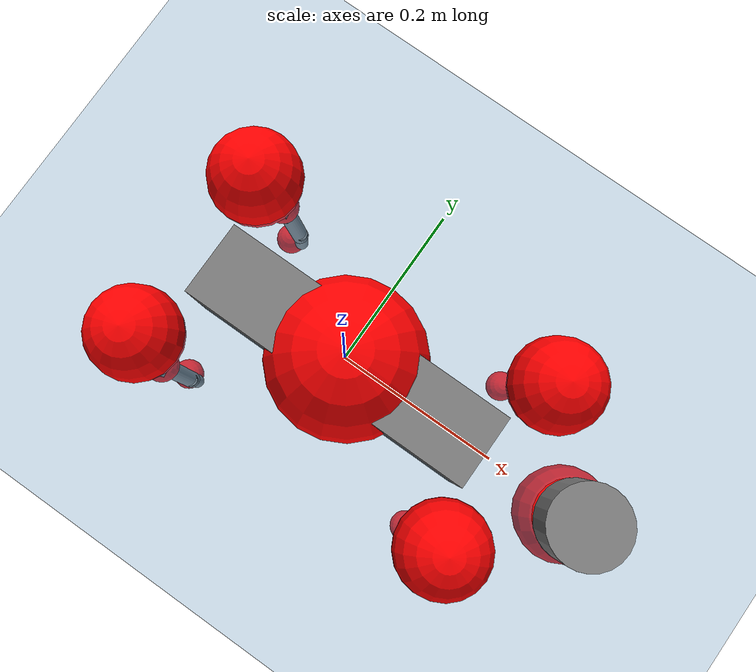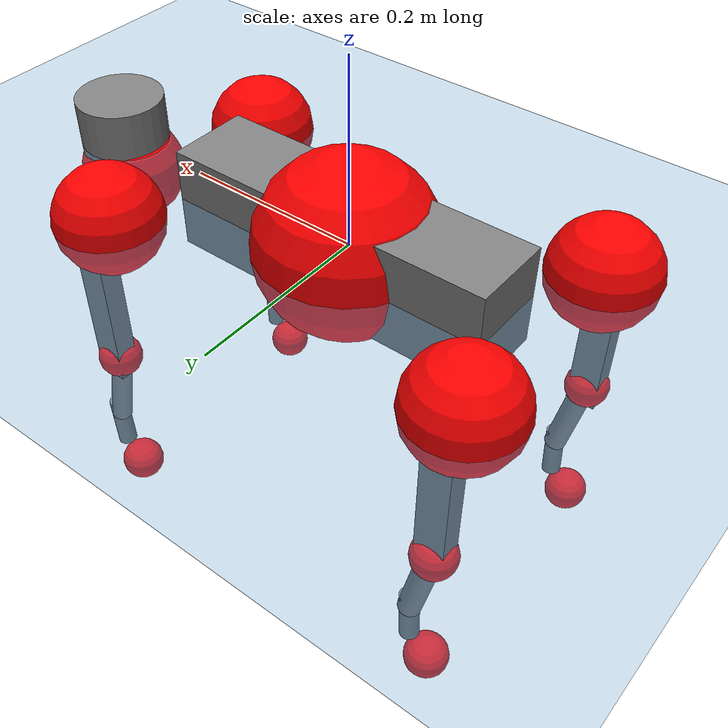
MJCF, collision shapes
<mujoco model="go2">
  <compiler angle="radian" assetdir="assets" balanceinertia="true" inertiafromgeom="false"/>

  <option timestep="0.005" density="1.2" viscosity="2e-05"/>

  <size nkey="1"/>

  <visual>
    <quality shadowsize="8192"/>
    <map shadowclip="0.5"/>
  </visual>

  <default>
    <default class="/">
      <geom contype="0" conaffinity="0" group="1" solref="-1000 -80"/>
      <site size="0.01 0.005 0.005" group="5"/>
      <general forcelimited="true" biastype="affine" gainprm="20" biasprm="0 -20 -0.5"/>
      <default class="go2">
        <joint armature="0.01" damping="0.01" frictionloss="0.2"/>
        <geom condim="1" margin="0.001"/>
        <default class="visual">
          <geom type="mesh" group="2"/>
        </default>
        <default class="collision">
          <geom group="3"/>
          <default class="foot">
            <geom size="0.022 0 0" condim="6" priority="1" friction="0.8 0.02 0.01" solimp="0.015 1 0.022"/>
          </default>
        </default>
        <default class="reward_collision_sphere">
          <geom group="5" rgba="1 0 0 1"/>
        </default>
      </default>
    </default>
  </default>

  <asset>
    <texture type="skybox" colorspace="auto" name="//unnamed_texture_0" builtin="gradient" rgb1="0.95 0.95 0.95" rgb2="0.95 0.95 0.95" width="100" height="600"/>
    <texture type="2d" colorspace="auto" name="texplane" builtin="checker" rgb1="0.345 0.575 0.748" rgb2="0.345 0.575 0.748" markrgb="1 1 1" width="512" height="512"/>
    <material name="MatPlane" class="/" texture="texplane" texuniform="true" texrepeat="2 2" specular="0.9"/>
    <material name="metal" class="/" rgba="0.9 0.95 0.95 1"/>
    <material name="black" class="/" rgba="0 0 0 1"/>
    <material name="white" class="/"/>
    <material name="gray" class="/" rgba="0.671705 0.692426 0.77427 1"/>
    <mesh name="base_0" class="/" file="base_0.obj"/>
    <mesh name="base_1" class="/" file="base_1.obj"/>
    <mesh name="base_2" class="/" file="base_2.obj"/>
    <mesh name="base_3" class="/" file="base_3.obj"/>
    <mesh name="base_4" class="/" file="base_4.obj"/>
    <mesh name="hip_0" class="/" file="hip_0.obj"/>
    <mesh name="hip_1" class="/" file="hip_1.obj"/>
    <mesh name="thigh_0" class="/" file="thigh_0.obj"/>
    <mesh name="thigh_1" class="/" file="thigh_1.obj"/>
    <mesh name="thigh_mirror_0" class="/" file="thigh_mirror_0.obj"/>
    <mesh name="thigh_mirror_1" class="/" file="thigh_mirror_1.obj"/>
    <mesh name="calf_0" class="/" file="calf_0.obj"/>
    <mesh name="calf_1" class="/" file="calf_1.obj"/>
    <mesh name="calf_mirror_0" class="/" file="calf_mirror_0.obj"/>
    <mesh name="calf_mirror_1" class="/" file="calf_mirror_1.obj"/>
    <mesh name="foot" class="/" file="foot.obj"/>
  </asset>

  <worldbody>
    <geom name="floor" class="/" size="100 100 0.125" type="plane" group="0" material="MatPlane"/>
    <light name="toplight_shadow" class="/" pos="0 0 5" dir="0.0990148 0.0990148 -0.990148" type="directional" ambient="0.04 0.04 0.04" diffuse="0.55 0.55 0.55" specular="0.12 0.12 0.12"/>
    <light name="toplight_fill" class="/" pos="0 0 5" dir="0.0990148 0.0990148 -0.990148" type="directional" castshadow="false" ambient="0.04 0.04 0.04" diffuse="0.3 0.3 0.3" specular="0.08 0.08 0.08"/>
    <body name="trunk" childclass="go2" pos="0.00233695 -0.000824864 -0.000545587" quat="1 0.000192065 0.000160187 -0.000398256">
      <inertial pos="0.0231342 -0.00056922 -0.004302" quat="-0.000422187 0.713308 -0.0015312 0.700849" mass="6.24293" diaginertia="0.188437 0.0945123 0.00856726"/>
      <joint name="//unnamed_joint_0" type="free" armature="0" damping="0" frictionloss="0"/>
      <geom name="//unnamed_geom_1" class="visual" material="black" mesh="base_0"/>
      <geom name="//unnamed_geom_2" class="visual" material="black" mesh="base_1"/>
      <geom name="//unnamed_geom_3" class="visual" material="black" mesh="base_2"/>
      <geom name="//unnamed_geom_4" class="visual" material="white" mesh="base_3"/>
      <geom name="//unnamed_geom_5" class="visual" material="gray" mesh="base_4"/>
      <geom name="trunk_1" class="collision" size="0.182139 0.0452685 0.0551937" type="box"/>
      <geom name="trunk_2" class="collision" size="0.0484156 0.043574" pos="0.315743 0 0.00810386" type="cylinder"/>
      <geom name="trunk_3" class="collision" size="0.0455106" pos="0.324606 0 -0.0486232"/>
      <geom name="//unnamed_geom_9" class="reward_collision_sphere" size="0.0968311"/>
      <geom name="//unnamed_geom_10" class="reward_collision_sphere" size="0.0580987" pos="0.310203 0 -0.0364674"/>
      <site name="imu" pos="-0.033522 0.000230884 0.0212956" size="0.00968311"/>
      <camera name="track" pos="0 -1.97336 0" quat="0.707107 0.707107 0 0" mode="trackcom"/>
      <camera name="ego_camera" pos="0.345655 0 0.0364674" quat="-0.5 -0.5 0.5 0.5"/>
      <body name="FL_hip" pos="0.214615 0.0461864 6.93914e-05" quat="1 -0.000407755 0.000183259 0.000807318">
        <inertial pos="-0.00838103 0.0028258 -9.30606e-05" quat="0.497868 0.499168 0.505278 0.497648" mass="0.619019" diaginertia="0.00148261 0.000545586 0.000166757"/>
        <joint name="FL_hip_joint" pos="0 0 0" axis="0.999902 0.0123793 0.00658548" range="-1.06095 1.05012" armature="0.0084106" damping="0.00656302" frictionloss="0.191412"/>
        <geom name="//unnamed_geom_11" class="visual" material="metal" mesh="hip_0"/>
        <geom name="//unnamed_geom_12" class="visual" material="gray" mesh="hip_1"/>
        <geom name="//unnamed_geom_13" class="collision" size="0.0445423 0.0193662" pos="0 0.0789342 0" quat="0.707107 0.707107 0 0" type="cylinder"/>
        <geom name="//unnamed_geom_14" class="reward_collision_sphere" size="0.0580987" pos="0 0.0690674 0"/>
        <body name="FL_thigh" pos="-0.00149368 0.0943438 0.000461229" quat="1 5.12867e-05 -1.16028e-05 0.000130311">
          <inertial pos="-0.00476253 -0.0217061 -0.0289809" quat="0.829485 0.0829438 -0.0197029 0.551985" mass="1.06557" diaginertia="0.0100742 0.00553748 0.000310369"/>
          <joint name="FL_thigh_joint" pos="0 0 0" axis="0.00883697 0.999944 0.0058682" range="-1.58433 3.4946" armature="0.0107312" damping="0" frictionloss="0.190338"/>
          <geom name="//unnamed_geom_15" class="visual" material="metal" mesh="thigh_0"/>
          <geom name="//unnamed_geom_16" class="visual" material="gray" mesh="thigh_1"/>
          <geom name="//unnamed_geom_17" class="collision" size="0.103125 0.0118618 0.0164613" pos="0 0 -0.0863061" quat="0.707107 0 0.707107 0" type="box"/>
          <body name="FL_calf" pos="-0.000432984 -0.0030671 -0.172531" quat="1 0.00026712 -0.000324137 -0.000493654">
            <inertial pos="0.00695916 0.000137388 -0.114799" quat="0.70278 0.00544499 -0.00897804 0.711329" mass="0.222144" diaginertia="0.00245386 0.00137489 1.82129e-05"/>
            <joint name="FL_calf_joint" pos="0 0 0" axis="-0.0108872 0.999933 -0.00380738" stiffness="0.00242516" range="-2.72375 -0.833236" armature="0.00961665" damping="0" frictionloss="0.197617"/>
            <geom name="//unnamed_geom_18" class="visual" material="gray" mesh="calf_0"/>
            <geom name="//unnamed_geom_19" class="visual" material="black" mesh="calf_1"/>
            <geom name="FL_calf0" class="collision" size="0.0116197 0.0580987" pos="0.00886295 0 -0.0486232" quat="0.994493 0 -0.104807 0" type="cylinder"/>
            <geom name="//unnamed_geom_21" class="collision" size="0.0106514 0.0314701" pos="0.0221574 0 -0.119937" quat="0.999688 0 0.0249974 0" type="cylinder"/>
            <geom name="//unnamed_geom_22" class="visual" pos="0 0 -0.172612" quat="1 0 0 0" material="black" mesh="foot"/>
            <geom name="FL_foot" class="foot" size="0.0193289" pos="-0.00221574 0 -0.172612"/>
            <geom name="//unnamed_geom_24" class="reward_collision_sphere" size="0.0242078"/>
            <geom name="//unnamed_geom_25" class="reward_collision_sphere" size="0.0242078" pos="-0.00221574 0 -0.172612"/>
            <site name="FL_foot" class="foot" pos="-0.00221574 0 -0.172612" size="0.00968311"/>
          </body>
        </body>
      </body>
      <body name="FR_hip" pos="0.21225 -0.0429689 -0.0017993" quat="1 3.97264e-06 -5.72004e-07 -3.95428e-07">
        <inertial pos="-0.00320432 -0.00289302 -0.00269646" quat="0.495683 0.507004 0.499767 0.497473" mass="0.634342" diaginertia="0.00151234 0.000568569 0.000173007"/>
        <joint name="FR_hip_joint" pos="0 0 0" axis="0.999952 0.00976959 -0.00100836" stiffness="0.00044617" range="-1.09987 1.05644" armature="0.00962811" damping="0.0162866" frictionloss="0.173925"/>
        <geom name="//unnamed_geom_26" class="visual" pos="0 1.53578e-09 6.58727e-08" quat="4.63268e-05 1 0 0" material="metal" mesh="hip_0"/>
        <geom name="//unnamed_geom_27" class="visual" pos="0 2.48968e-09 -1.62928e-07" quat="4.63268e-05 1 0 0" material="gray" mesh="hip_1"/>
        <geom name="//unnamed_geom_28" class="collision" size="0.0445423 0.0193662" pos="0 -0.0789342 0" quat="0.707107 0.707107 0 0" type="cylinder"/>
        <geom name="//unnamed_geom_29" class="reward_collision_sphere" size="0.0580987" pos="0 -0.0690674 0"/>
        <body name="FR_thigh" pos="0.000928871 -0.0942737 0.000963816" quat="1 -3.74314e-06 -9.01664e-06 -2.91421e-05">
          <inertial pos="-0.00349709 0.0247762 -0.0274311" quat="0.552017 -0.0207792 0.0848116 0.829248" mass="1.03155" diaginertia="0.00991726 0.0053717 0.000302742"/>
          <joint name="FR_thigh_joint" pos="0 0 0" axis="0.00379035 -0.999991 -0.00186173" range="-3.49408 1.56446" armature="0.0102371" damping="0.00825193" frictionloss="0.187656"/>
          <geom name="//unnamed_geom_30" class="visual" material="metal" mesh="thigh_mirror_0"/>
          <geom name="//unnamed_geom_31" class="visual" material="gray" mesh="thigh_mirror_1"/>
          <geom name="//unnamed_geom_32" class="collision" size="0.103125 0.0118618 0.0164613" pos="0 0 -0.0863061" quat="0.707107 0 0.707107 0" type="box"/>
          <body name="FR_calf" pos="-0.000425846 -0.000534433 -0.170378" quat="0.999999 -0.00046561 -0.000805352 0.000899974">
            <inertial pos="0.00959545 -5.64656e-05 -0.112868" quat="0.702459 -0.00483989 -0.000465238 0.711708" mass="0.214057" diaginertia="0.00249056 0.00140962 1.92356e-05"/>
            <joint name="FR_calf_joint" pos="0 0 0" axis="-0.00152131 -0.999981 0.00600939" stiffness="0.00654204" range="0.784334 2.71197" armature="0.00967194" damping="0.0210169" frictionloss="0.215761"/>
            <geom name="//unnamed_geom_33" class="visual" material="gray" mesh="calf_mirror_0"/>
            <geom name="//unnamed_geom_34" class="visual" material="black" mesh="calf_mirror_1"/>
            <geom name="FR_calf0" class="collision" size="0.012588 0.0580987" pos="0.0110787 0 -0.0486232" quat="0.995004 0 -0.0998334 0" type="cylinder"/>
            <geom name="//unnamed_geom_36" class="collision" size="0.0106514 0.0314701" pos="0.0221574 0 -0.119937" quat="0.999688 0 0.0249974 0" type="cylinder"/>
            <geom name="//unnamed_geom_37" class="visual" pos="0 0 -0.172612" quat="1 0 0 0" material="black" mesh="foot"/>
            <geom name="FR_foot" class="foot" size="0.0218439" pos="-0.00221574 0 -0.172612"/>
            <geom name="//unnamed_geom_39" class="reward_collision_sphere" size="0.0242078"/>
            <geom name="//unnamed_geom_40" class="reward_collision_sphere" size="0.0242078" pos="-0.00221574 0 -0.172612"/>
            <site name="FR_foot" class="foot" pos="-0.00221574 0 -0.172612" size="0.00968311"/>
          </body>
        </body>
      </body>
      <body name="RL_hip" pos="-0.211937 0.0443019 0.00128335" quat="1 1.84403e-06 9.79265e-06 9.14425e-06">
        <inertial pos="0.00851169 -0.000476674 -0.000397404" quat="0.496123 0.500082 0.502257 0.501516" mass="0.619196" diaginertia="0.00149793 0.000559971 0.000163641"/>
        <joint name="RL_hip_joint" pos="0 0 0" axis="-0.999982 -0.00117381 0.00582479" stiffness="8.19766e-05" range="-1.02518 1.02619" armature="0.00967457" damping="0.00877207" frictionloss="0.203319"/>
        <geom name="//unnamed_geom_41" class="visual" pos="-2.59155e-09 0 -5.08003e-07" quat="4.63268e-05 0 1 0" material="metal" mesh="hip_0"/>
        <geom name="//unnamed_geom_42" class="visual" pos="-4.20121e-09 0 -4.50526e-07" quat="4.63268e-05 0 1 0" material="gray" mesh="hip_1"/>
        <geom name="//unnamed_geom_43" class="collision" size="0.0445423 0.0193662" pos="0 0.0789342 0" quat="0.707107 0.707107 0 0" type="cylinder"/>
        <geom name="//unnamed_geom_44" class="reward_collision_sphere" size="0.0580987" pos="0 0.0690674 0"/>
        <body name="RL_thigh" pos="0.000463104 0.0937187 0.000259693" quat="1 -0.000117445 -0.000269694 0.000297904">
          <inertial pos="-0.00480931 -0.0192679 -0.0259158" quat="0.825961 0.0814913 -0.02394 0.557292" mass="1.05332" diaginertia="0.00996488 0.00559368 0.000302031"/>
          <joint name="RL_thigh_joint" pos="0 0 0" axis="-0.00441973 0.99996 -0.0077895" range="-0.501883 4.54727" armature="0.0109298" damping="0.00182939" frictionloss="0.213932"/>
          <geom name="//unnamed_geom_45" class="visual" material="metal" mesh="thigh_0"/>
          <geom name="//unnamed_geom_46" class="visual" material="gray" mesh="thigh_1"/>
          <geom name="//unnamed_geom_47" class="collision" size="0.103125 0.0118618 0.0164613" pos="0 0 -0.0863061" quat="0.707107 0 0.707107 0" type="box"/>
          <body name="RL_calf" pos="-0.00112719 0.00180649 -0.175305" quat="0.999999 -0.000756179 -0.000614241 -0.000780519">
            <inertial pos="0.00747602 -0.000466588 -0.111933" quat="0.71096 0.00199648 -0.00447026 0.703216" mass="0.211657" diaginertia="0.00247384 0.00137151 1.85348e-05"/>
            <joint name="RL_calf_joint" pos="0 0 0" axis="-0.00158137 0.999986 0.00498061" range="-2.73937 -0.854466" armature="0.00923394" damping="0.0100282" frictionloss="0.177004"/>
            <geom name="//unnamed_geom_48" class="visual" material="gray" mesh="calf_0"/>
            <geom name="//unnamed_geom_49" class="visual" material="black" mesh="calf_1"/>
            <geom name="RL_calf0" class="collision" size="0.012588 0.0580987" pos="0.0110787 0 -0.0486232" quat="0.995004 0 -0.0998334 0" type="cylinder"/>
            <geom name="//unnamed_geom_51" class="collision" size="0.0106514 0.0314701" pos="0.0221574 0 -0.119937" quat="0.999688 0 0.0249974 0" type="cylinder"/>
            <geom name="//unnamed_geom_52" class="visual" pos="0 0 -0.172612" quat="1 0 0 0" material="black" mesh="foot"/>
            <geom name="RL_foot" class="foot" size="0.0173777" pos="-0.00221574 0 -0.172612"/>
            <geom name="//unnamed_geom_54" class="reward_collision_sphere" size="0.0242078"/>
            <geom name="//unnamed_geom_55" class="reward_collision_sphere" size="0.0242078" pos="-0.00221574 0 -0.172612"/>
            <site name="RL_foot" class="foot" pos="-0.00221574 0 -0.172612" size="0.00968311"/>
          </body>
        </body>
      </body>
      <body name="RR_hip" pos="-0.216575 -0.0475616 -0.000126811" quat="1 8.85686e-05 0.000445948 4.5327e-05">
        <inertial pos="0.00713832 -0.00186546 -0.000238404" quat="0.503839 0.486937 0.496926 0.511961" mass="0.618867" diaginertia="0.0014915 0.000567298 0.000170305"/>
        <joint name="RR_hip_joint" pos="0 0 0" axis="-0.999907 0.0129535 -0.00434464" stiffness="0.00328158" range="-1.04556 1.02636" armature="0.0100613" damping="0.0025036" frictionloss="0.192652"/>
        <geom name="//unnamed_geom_56" class="visual" pos="2.58735e-09 1.53578e-09 -5.73876e-07" quat="2.14617e-09 4.63268e-05 4.63268e-05 -1" material="metal" mesh="hip_0"/>
        <geom name="//unnamed_geom_57" class="visual" pos="4.21159e-09 2.48968e-09 -2.87598e-07" quat="2.14617e-09 4.63268e-05 4.63268e-05 -1" material="gray" mesh="hip_1"/>
        <geom name="//unnamed_geom_58" class="collision" size="0.0445423 0.0193662" pos="0 -0.0789342 0" quat="0.707107 0.707107 0 0" type="cylinder"/>
        <geom name="//unnamed_geom_59" class="reward_collision_sphere" size="0.0580987" pos="0 -0.0690674 0"/>
        <body name="RR_thigh" pos="0.000266755 -0.0936651 0.0010094" quat="1 -0.000124338 -2.71923e-05 -0.000105607">
          <inertial pos="-0.00485235 0.0216025 -0.0275574" quat="0.558872 -0.020326 0.0744145 0.825658" mass="1.0545" diaginertia="0.0098408 0.00557947 0.000316137"/>
          <joint name="RR_thigh_joint" pos="0 0 0" axis="-0.00261682 -0.999996 0.000508464" range="-4.5437 0.505697" armature="0.0105823" damping="0.00634049" frictionloss="0.195313"/>
          <geom name="//unnamed_geom_60" class="visual" material="metal" mesh="thigh_mirror_0"/>
          <geom name="//unnamed_geom_61" class="visual" material="gray" mesh="thigh_mirror_1"/>
          <geom name="//unnamed_geom_62" class="collision" size="0.103125 0.0118618 0.0164613" pos="0 0 -0.0863061" quat="0.707107 0 0.707107 0" type="box"/>
          <body name="RR_calf" pos="0.000497642 -0.00113517 -0.173032" quat="1 0.000282687 7.5007e-05 3.7984e-05">
            <inertial pos="0.00454456 -0.00196767 -0.112225" quat="0.702457 -0.00411898 0.0038504 0.711704" mass="0.223759" diaginertia="0.00244375 0.0013993 1.85326e-05"/>
            <joint name="RR_calf_joint" pos="0 0 0" axis="-0.0058454 -0.999977 -0.00352569" stiffness="0.0027896" range="0.857549 2.77644" armature="0.00965455" damping="0.0098902" frictionloss="0.218602"/>
            <geom name="//unnamed_geom_63" class="visual" material="gray" mesh="calf_mirror_0"/>
            <geom name="//unnamed_geom_64" class="visual" material="black" mesh="calf_mirror_1"/>
            <geom name="RR_calf0" class="collision" size="0.012588 0.0580987" pos="0.0110787 0 -0.0486232" quat="0.995004 0 -0.0998334 0" type="cylinder"/>
            <geom name="//unnamed_geom_66" class="collision" size="0.0106514 0.0314701" pos="0.0221574 0 -0.119937" quat="0.999688 0 0.0249974 0" type="cylinder"/>
            <geom name="//unnamed_geom_67" class="visual" pos="0 0 -0.172612" quat="1 0 0 0" material="black" mesh="foot"/>
            <geom name="RR_foot" class="foot" size="0.0231072" pos="-0.00221574 0 -0.172612"/>
            <geom name="//unnamed_geom_69" class="reward_collision_sphere" size="0.0242078"/>
            <geom name="//unnamed_geom_70" class="reward_collision_sphere" size="0.0242078" pos="-0.00221574 0 -0.172612"/>
            <site name="RR_foot" class="foot" pos="-0.00221574 0 -0.172612" size="0.00968311"/>
          </body>
        </body>
      </body>
    </body>
  </worldbody>

  <contact>
    <pair class="/" geom1="floor" geom2="FL_foot" name="//unnamed_contact_0"/>
    <pair class="/" geom1="floor" geom2="FR_foot" name="//unnamed_contact_1"/>
    <pair class="/" geom1="floor" geom2="RL_foot" name="//unnamed_contact_2"/>
    <pair class="/" geom1="floor" geom2="RR_foot" name="//unnamed_contact_3"/>
  </contact>

  <actuator>
    <general name="FL_hip" class="/" joint="FL_hip_joint" forcerange="-22.8377 22.8377" gainprm="19.5121" biasprm="0 -19.5121 -0.471697"/>
    <general name="FL_thigh" class="/" joint="FL_thigh_joint" forcerange="-21.1963 21.1963" gainprm="19.5121" biasprm="0 -19.5121 -0.471697"/>
    <general name="FL_calf" class="/" joint="FL_calf_joint" forcerange="-43.5505 43.5505" gainprm="19.5121" biasprm="0 -19.5121 -0.471697"/>
    <general name="FR_hip" class="/" joint="FR_hip_joint" forcerange="-22.8546 22.8546" gainprm="19.5121" biasprm="0 -19.5121 -0.471697"/>
    <general name="FR_thigh" class="/" joint="FR_thigh_joint" forcerange="-23.1375 23.1375" gainprm="19.5121" biasprm="0 -19.5121 -0.471697"/>
    <general name="FR_calf" class="/" joint="FR_calf_joint" forcerange="-45.4872 45.4872" gainprm="19.5121" biasprm="0 -19.5121 -0.471697"/>
    <general name="RL_hip" class="/" joint="RL_hip_joint" forcerange="-23.0074 23.0074" gainprm="19.5121" biasprm="0 -19.5121 -0.471697"/>
    <general name="RL_thigh" class="/" joint="RL_thigh_joint" forcerange="-23.6918 23.6918" gainprm="19.5121" biasprm="0 -19.5121 -0.471697"/>
    <general name="RL_calf" class="/" joint="RL_calf_joint" forcerange="-44.3484 44.3484" gainprm="19.5121" biasprm="0 -19.5121 -0.471697"/>
    <general name="RR_hip" class="/" joint="RR_hip_joint" forcerange="-22.4773 22.4773" gainprm="19.5121" biasprm="0 -19.5121 -0.471697"/>
    <general name="RR_thigh" class="/" joint="RR_thigh_joint" forcerange="-21.9883 21.9883" gainprm="19.5121" biasprm="0 -19.5121 -0.471697"/>
    <general name="RR_calf" class="/" joint="RR_calf_joint" forcerange="-39.7874 39.7874" gainprm="19.5121" biasprm="0 -19.5121 -0.471697"/>
  </actuator>

  <sensor>
    <gyro site="imu" name="imu_angular_velocity"/>
    <velocimeter site="imu" name="imu_linear_velocity"/>
    <framelinvel objtype="site" objname="FL_foot" name="FL_foot_global_linear_velocity"/>
    <framelinvel objtype="site" objname="FR_foot" name="FR_foot_global_linear_velocity"/>
    <framelinvel objtype="site" objname="RL_foot" name="RL_foot_global_linear_velocity"/>
    <framelinvel objtype="site" objname="RR_foot" name="RR_foot_global_linear_velocity"/>
  </sensor>

  <keyframe>
    <key name="home" qpos="0 0 0.325 1 0 0 0 0.1 0.8 -1.5 -0.1 -0.8 1.5 -0.1 0.8 -1.5 0.1 -0.8 1.5"/>
  </keyframe>
</mujoco>
